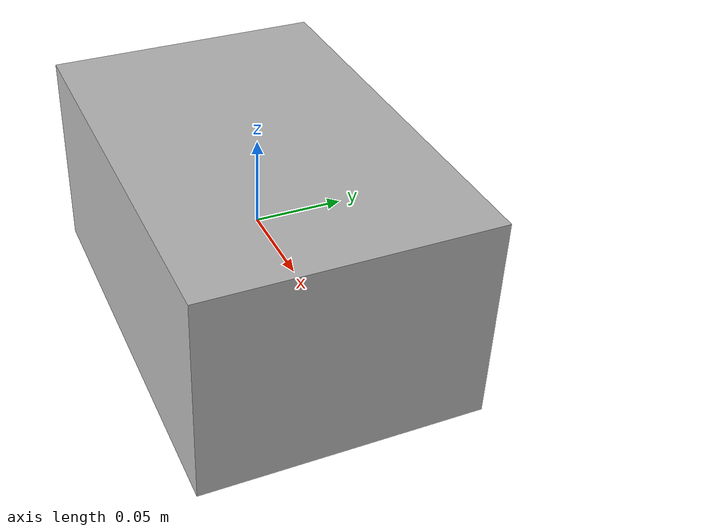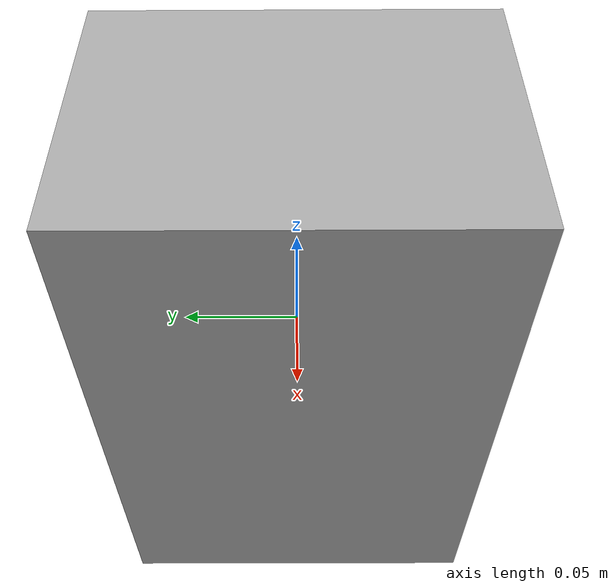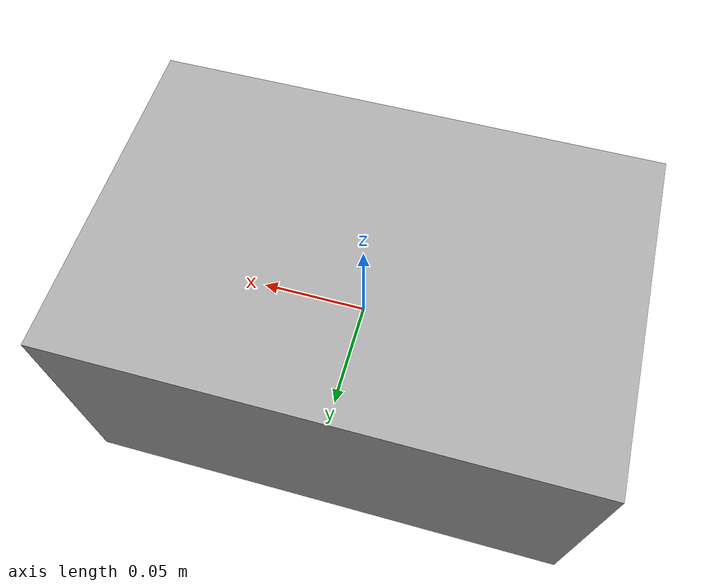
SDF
<?xml version="1.0" ?>
<sdf version='1.6'>
    <model name='cardboard_box'>
      <link name='link'>
        <inertial>
          <mass>2</mass>
          <inertia>
            <ixx>0.0416667</ixx>
            <ixy>0</ixy>
            <ixz>0</ixz>
            <iyy>0.0566667</iyy>
            <iyz>0</iyz>
            <izz>0.0683333</izz>
          </inertia>
        </inertial>
        <collision name='collision'>
          <geometry>
            <box>
              <size>0.24 0.16 0.11</size>
            </box>
          </geometry>
          <surface>
            <friction>
              <ode>
                <mu>1</mu>
                <mu2>1</mu2>
              </ode>
              <torsional>
                <ode/>
              </torsional>
            </friction>
            <contact>
              <ode>
                <kp>1e+07</kp>
                <kd>1</kd>
                <min_depth>0.001</min_depth>
                <max_vel>0.1</max_vel>
              </ode>
            </contact>
            <bounce/>
          </surface>
          <max_contacts>10</max_contacts>
        </collision>
        <visual name='visual'>
          <pose frame=''>0 0 -0.065 0 -0 0</pose>
          <geometry>
            <mesh>
              <uri>model://cardboard_box/meshes/cardboard_box.dae</uri>
              <scale>0.6 0.4 0.3</scale>
            </mesh>
          </geometry>
        </visual>
        <self_collide>0</self_collide>
        <enable_wind>0</enable_wind>
        <kinematic>0</kinematic>
      </link>
    </model>
</sdf>
